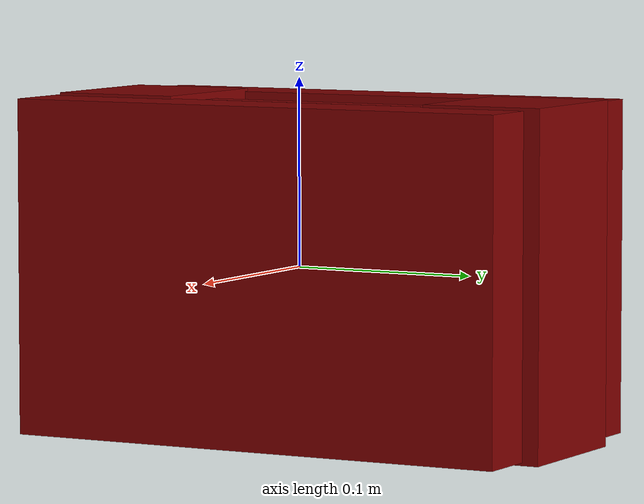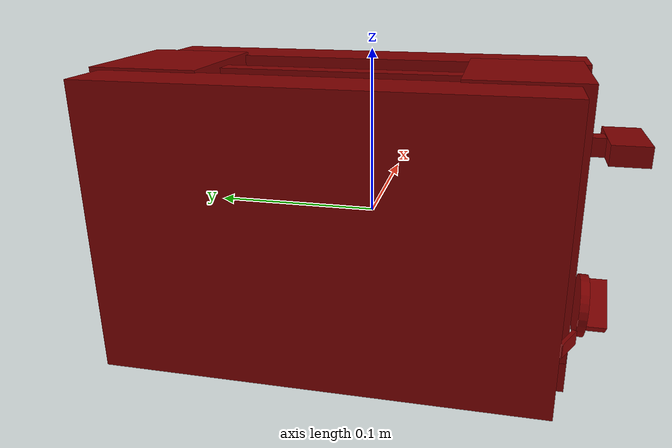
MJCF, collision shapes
<?xml version='1.0' encoding='UTF-8'?>
<mujoco model="model">
  <compiler angle="radian"/>
  <asset>
    <mesh file="visuals/Body001.obj" name="Body001_vis"/>
    <mesh file="visuals/Button001.obj" name="Button001_vis"/>
    <mesh file="visuals/Knob001.obj" name="Knob001_vis"/>
    <mesh file="visuals/Lever001.obj" name="Lever001_vis"/>
    <texture file="visuals/T_BC001.png" name="Body001_material" type="2d"/>
    <material name="Body001_material" rgba="1 1 1 1.0" texture="Body001_material" shininess="1" specular="1"/>
    <texture file="visuals/T_BC001.png" name="Button001_material" type="2d"/>
    <material name="Button001_material" rgba="1 1 1 1.0" texture="Button001_material" shininess="1" specular="1"/>
    <texture file="visuals/T_BC001.png" name="Knob001_material" type="2d"/>
    <material name="Knob001_material" rgba="1 1 1 1.0" texture="Knob001_material" shininess="1" specular="1"/>
    <texture file="visuals/T_BC001.png" name="Lever001_material" type="2d"/>
    <material name="Lever001_material" rgba="1 1 1 1.0" texture="Lever001_material" shininess="1" specular="1"/>
  </asset>
  <default>
    <default class="visual">
      <geom conaffinity="0" contype="0" group="1" type="mesh"/>
    </default>
    <default class="collision">
      <geom group="0" rgba="0.5 0 0 0.5"/>
    </default>
    <default class="spawn">
      <geom group="0" rgba="1 1 1 0.5" contype="0" conaffinity="0"/>
      <site group="0" rgba="1 1 1 0.5"/>
    </default>
    <default class="region">
      <geom group="1" conaffinity="0" contype="0" rgba="0 1 0 0"/>
    </default>
  </default>
  <worldbody>
    <body>
      <body name="object">
        <geom mesh="Body001_vis" type="mesh" solimp="0.998 0.998 0.001" solref="0.001 1" density="100" friction="0.95 0.3 0.1" class="visual" material="Body001_material"/>
        <geom class="collision" type="box" pos="-0.056559 0.018404 0.000865" size="0.017723381519317627 0.13375632464885712 0.08814569562673569" quat="1.0 0.0 0.0 0.0"/>
        <geom class="collision" type="box" pos="0.054687 0.011007 0.000314" size="0.019596176221966743 0.13869863748550415 0.08869626373052597" quat="1.0 0.0 0.0 0.0"/>
        <geom class="collision" type="box" pos="-0.000613 0.125835 0.000308" size="0.040716011077165604 0.03273611515760422 0.09024330228567123" quat="1.0 0.0 0.0 0.0"/>
        <geom class="collision" type="box" pos="-0.000613 -0.088826 0.009655" size="0.040715884417295456 0.03408482298254967 0.08094826340675354" quat="1.0 0.0 0.0 0.0"/>
        <geom class="collision" type="box" pos="-0.000613 0.013131 0.010302" size="0.006363639608025551 0.08127546310424805 0.07665171474218369" quat="1.0 0.0 0.0 0.0"/>
        <geom class="collision" type="box" pos="-0.000613 -0.014874 -0.074908" size="0.040402963757514954 0.10838718712329865 0.01569519191980362" quat="1.0 0.0 0.0 0.0"/>
        <body name="Button001">
          <joint axis="0.4437360167503357 0.8961576223373413 0.0" pos="-0.047816 -0.120401 -0.053390" limited="true" name="Button001_joint" range="0.0 0.001" type="slide" damping="1" frictionloss="1" armature=".01" stiffness="0.05"/>
          <geom mesh="Button001_vis" type="mesh" solimp="0.998 0.998 0.001" solref="0.001 1" density="100" friction="0.95 0.3 0.1" class="visual" material="Button001_material"/>
          <geom class="collision" type="box" pos="-0.048880 -0.121450 -0.053428" size="0.009501592256128788 0.0012664112728089094 0.004307916853576899" quat="0.9719321727752686 0.0 -0.0 -0.23526135087013245"/>
        </body>
        <body name="Knob001">
          <joint axis="0.0 1.0 0.0" pos="-0.000612 -0.137768 -0.052245" limited="true" name="Knob001_joint" range="0.0 4.642575810304916" type="hinge" damping="0.05" armature="0.001"/>
          <geom mesh="Knob001_vis" type="mesh" solimp="0.998 0.998 0.001" solref="0.001 1" density="100" friction="0.95 0.3 0.1" class="visual" material="Knob001_material"/>
          <geom class="collision" type="cylinder" pos="-0.000844 -0.132287 -0.053326" size="0.01947701722383499 0.002702809404581785" quat="0.6946583986282349 0.7193397879600525 0.0 0.0" density="0.001"/>
          <geom class="collision" type="box" pos="-0.001301 -0.139625 -0.052058" size="0.004428432788699865 0.007884013466536999 0.015563925728201866" quat="0.385798841714859 -2.3694221695791384e-08 -0.9225829243659973 -1.6682582426597037e-08" density="0.001"/>
        </body>
        <body name="Lever001">
          <joint axis="0.0 0.0 -1.0" pos="-0.000613 -0.128342 0.048119" limited="true" name="Lever001_joint" range="0.0 0.06" type="slide" damping="1" frictionloss="1" armature=".01" stiffness="1" springref="-1"/>
          <geom mesh="Lever001_vis" type="mesh" solimp="0.998 0.998 0.001" solref="0.001 1" density="100" friction="0.95 0.3 0.1" class="visual" material="Lever001_material"/>
          <geom class="collision" type="box" pos="-0.000613 -0.131927 0.049109" size="0.005304454360157251 0.007526226341724396 0.005593231879174709" quat="1.0 0.0 0.0 0.0"/>
          <geom class="collision" type="box" pos="-0.000703 -0.146209 0.049305" size="0.022096820175647736 0.011113022454082966 0.005966723896563053" quat="1.0 0.0 0.0 0.0" name="lever_knob"/>
          <geom class="collision" type="box" pos="-0.022971 0.018675 0.077322" size="0.012665169313549995 0.07211378216743469 0.00337961339391768" quat="1.0 0.0 0.0 0.0" name="slotL_floor"/>
          <geom class="collision" type="box" pos="0.021007 0.018675 0.077322" size="0.012665169313549995 0.07211378216743469 0.00337961339391768" quat="1.0 0.0 0.0 0.0" name="slotR_floor"/>
        </body>
        <geom class="region" name="reg_main" type="box" pos="-0.0006130000000000024 0.011787000000000006 0.0002669999999999964" size="0.073212 0.14340999999999998 0.08999599999999999"/>
      </body>
    </body>
  </worldbody>
  <actuator>
    <motor name="Button001_joint_actuator" joint="Button001_joint" gear="0.5"/>
    <motor name="Knob001_joint_actuator" joint="Knob001_joint" gear="0.5"/>
    <motor name="Lever001_joint_actuator" joint="Lever001_joint" gear="0.5"/>
  </actuator>
</mujoco>
